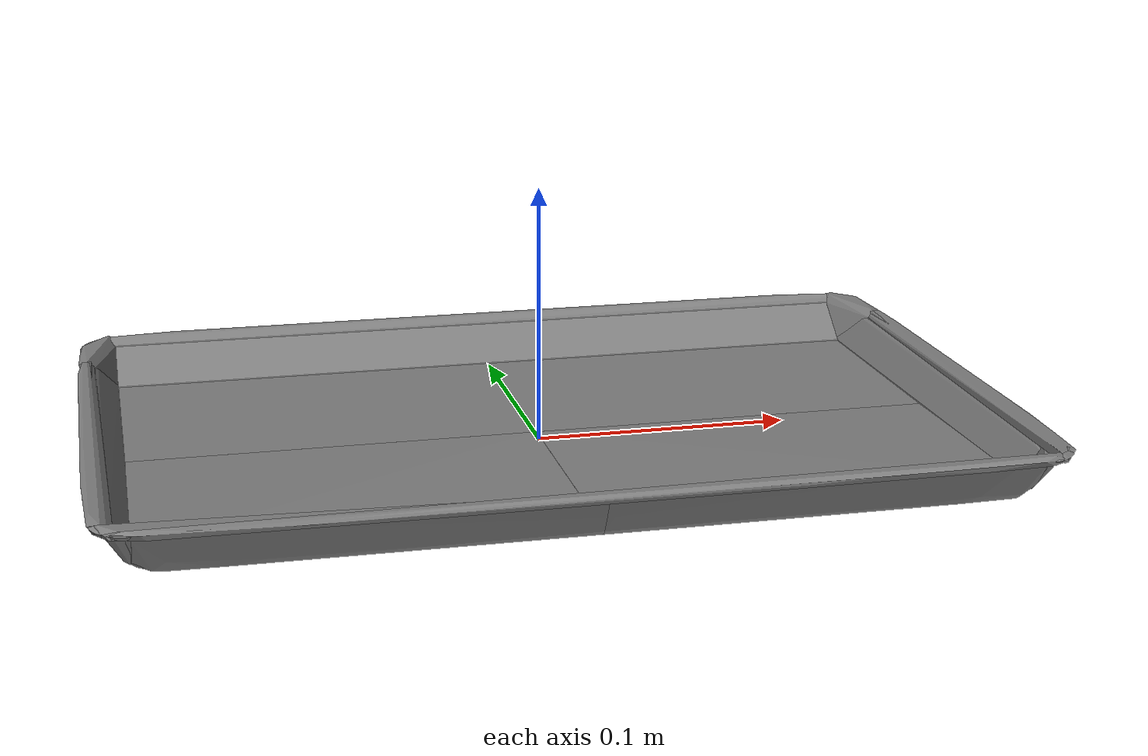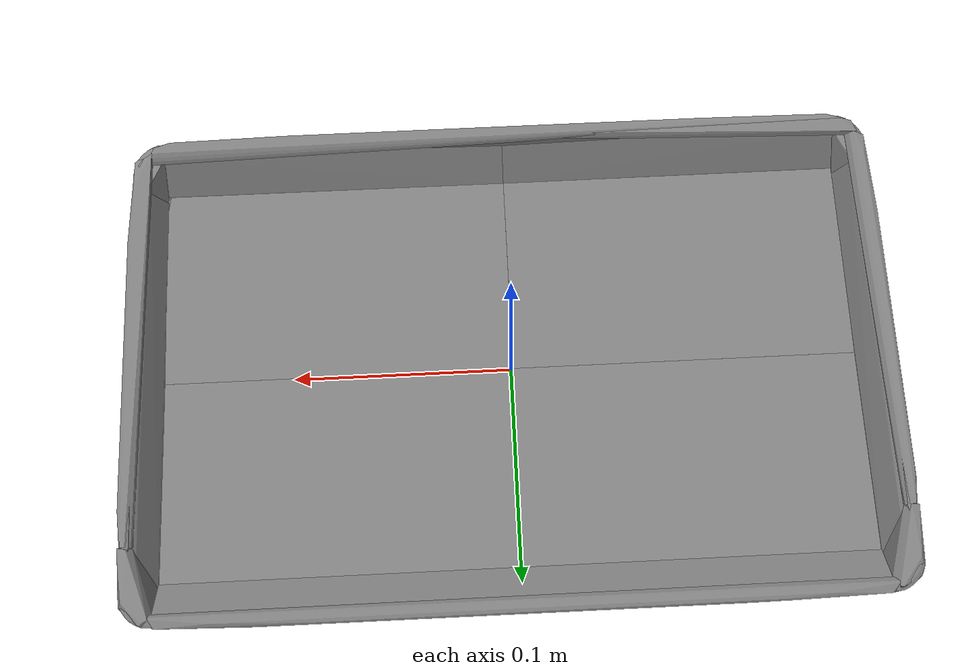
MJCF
<mujoco model="baking_tray1">
  <asset>
    <mesh file="../../meshes/train/baking_tray1/simple_mesh.stl" name="baking_tray1_mesh" scale="1 1 1"/>
    <mesh file="../../meshes/train/baking_tray1/baking_tray1_hull_1.stl" name="baking_tray1_hull_mesh_1" scale="1 1 1"/>
    <mesh file="../../meshes/train/baking_tray1/baking_tray1_hull_2.stl" name="baking_tray1_hull_mesh_2" scale="1 1 1"/>
    <mesh file="../../meshes/train/baking_tray1/baking_tray1_hull_3.stl" name="baking_tray1_hull_mesh_3" scale="1 1 1"/>
    <mesh file="../../meshes/train/baking_tray1/baking_tray1_hull_4.stl" name="baking_tray1_hull_mesh_4" scale="1 1 1"/>
    <mesh file="../../meshes/train/baking_tray1/baking_tray1_hull_5.stl" name="baking_tray1_hull_mesh_5" scale="1 1 1"/>
    <mesh file="../../meshes/train/baking_tray1/baking_tray1_hull_6.stl" name="baking_tray1_hull_mesh_6" scale="1 1 1"/>
    <mesh file="../../meshes/train/baking_tray1/baking_tray1_hull_7.stl" name="baking_tray1_hull_mesh_7" scale="1 1 1"/>
    <mesh file="../../meshes/train/baking_tray1/baking_tray1_hull_8.stl" name="baking_tray1_hull_mesh_8" scale="1 1 1"/>
    <mesh file="../../meshes/train/baking_tray1/baking_tray1_hull_9.stl" name="baking_tray1_hull_mesh_9" scale="1 1 1"/>
    <mesh file="../../meshes/train/baking_tray1/baking_tray1_hull_10.stl" name="baking_tray1_hull_mesh_10" scale="1 1 1"/>
    <mesh file="../../meshes/train/baking_tray1/baking_tray1_hull_11.stl" name="baking_tray1_hull_mesh_11" scale="1 1 1"/>
    <mesh file="../../meshes/train/baking_tray1/baking_tray1_hull_12.stl" name="baking_tray1_hull_mesh_12" scale="1 1 1"/>
    <mesh file="../../meshes/train/baking_tray1/baking_tray1_hull_13.stl" name="baking_tray1_hull_mesh_13" scale="1 1 1"/>
    <mesh file="../../meshes/train/baking_tray1/baking_tray1_hull_14.stl" name="baking_tray1_hull_mesh_14" scale="1 1 1"/>
    <mesh file="../../meshes/train/baking_tray1/baking_tray1_hull_15.stl" name="baking_tray1_hull_mesh_15" scale="1 1 1"/>
    <mesh file="../../meshes/train/baking_tray1/baking_tray1_hull_16.stl" name="baking_tray1_hull_mesh_16" scale="1 1 1"/>
    <mesh file="../../meshes/train/baking_tray1/baking_tray1_hull_17.stl" name="baking_tray1_hull_mesh_17" scale="1 1 1"/>
  </asset>
  <worldbody>
    <body>
      <body name="object">
        <geom pos="0 0 0" mesh="baking_tray1_mesh" type="mesh" contype="0" conaffinity="0" group="1"/>
        <geom pos="0 0 0" mesh="baking_tray1_hull_mesh_1" type="mesh" margin="0.001" solimp="0.998 0.998 0.001" solref="0.001 1" density="2000" friction="0.95 0.3 0.1" group="0" condim="4"/>
        <geom pos="0 0 0" mesh="baking_tray1_hull_mesh_2" type="mesh" margin="0.001" solimp="0.998 0.998 0.001" solref="0.001 1" density="2000" friction="0.95 0.3 0.1" group="0" condim="4"/>
        <geom pos="0 0 0" mesh="baking_tray1_hull_mesh_3" type="mesh" margin="0.001" solimp="0.998 0.998 0.001" solref="0.001 1" density="2000" friction="0.95 0.3 0.1" group="0" condim="4"/>
        <geom pos="0 0 0" mesh="baking_tray1_hull_mesh_4" type="mesh" margin="0.001" solimp="0.998 0.998 0.001" solref="0.001 1" density="2000" friction="0.95 0.3 0.1" group="0" condim="4"/>
        <geom pos="0 0 0" mesh="baking_tray1_hull_mesh_5" type="mesh" margin="0.001" solimp="0.998 0.998 0.001" solref="0.001 1" density="2000" friction="0.95 0.3 0.1" group="0" condim="4"/>
        <geom pos="0 0 0" mesh="baking_tray1_hull_mesh_6" type="mesh" margin="0.001" solimp="0.998 0.998 0.001" solref="0.001 1" density="2000" friction="0.95 0.3 0.1" group="0" condim="4"/>
        <geom pos="0 0 0" mesh="baking_tray1_hull_mesh_7" type="mesh" margin="0.001" solimp="0.998 0.998 0.001" solref="0.001 1" density="2000" friction="0.95 0.3 0.1" group="0" condim="4"/>
        <geom pos="0 0 0" mesh="baking_tray1_hull_mesh_8" type="mesh" margin="0.001" solimp="0.998 0.998 0.001" solref="0.001 1" density="2000" friction="0.95 0.3 0.1" group="0" condim="4"/>
        <geom pos="0 0 0" mesh="baking_tray1_hull_mesh_9" type="mesh" margin="0.001" solimp="0.998 0.998 0.001" solref="0.001 1" density="2000" friction="0.95 0.3 0.1" group="0" condim="4"/>
        <geom pos="0 0 0" mesh="baking_tray1_hull_mesh_10" type="mesh" margin="0.001" solimp="0.998 0.998 0.001" solref="0.001 1" density="2000" friction="0.95 0.3 0.1" group="0" condim="4"/>
        <geom pos="0 0 0" mesh="baking_tray1_hull_mesh_11" type="mesh" margin="0.001" solimp="0.998 0.998 0.001" solref="0.001 1" density="2000" friction="0.95 0.3 0.1" group="0" condim="4"/>
        <geom pos="0 0 0" mesh="baking_tray1_hull_mesh_12" type="mesh" margin="0.001" solimp="0.998 0.998 0.001" solref="0.001 1" density="2000" friction="0.95 0.3 0.1" group="0" condim="4"/>
        <geom pos="0 0 0" mesh="baking_tray1_hull_mesh_13" type="mesh" margin="0.001" solimp="0.998 0.998 0.001" solref="0.001 1" density="2000" friction="0.95 0.3 0.1" group="0" condim="4"/>
        <geom pos="0 0 0" mesh="baking_tray1_hull_mesh_14" type="mesh" margin="0.001" solimp="0.998 0.998 0.001" solref="0.001 1" density="2000" friction="0.95 0.3 0.1" group="0" condim="4"/>
        <geom pos="0 0 0" mesh="baking_tray1_hull_mesh_15" type="mesh" margin="0.001" solimp="0.998 0.998 0.001" solref="0.001 1" density="2000" friction="0.95 0.3 0.1" group="0" condim="4"/>
        <geom pos="0 0 0" mesh="baking_tray1_hull_mesh_16" type="mesh" margin="0.001" solimp="0.998 0.998 0.001" solref="0.001 1" density="2000" friction="0.95 0.3 0.1" group="0" condim="4"/>
        <geom pos="0 0 0" mesh="baking_tray1_hull_mesh_17" type="mesh" margin="0.001" solimp="0.998 0.998 0.001" solref="0.001 1" density="2000" friction="0.95 0.3 0.1" group="0" condim="4"/>
      </body>
      <site rgba="0 0 0 0" size="0.005" pos="0 0 -0.001" name="bottom_site"/>
      <site rgba="0 0 0 0" size="0.005" pos="0 0 0.02" name="top_site"/>
      <site rgba="0 0 0 0" size="0.005" pos="0.0375 0.02 0" name="horizontal_radius_site"/>
    </body>
  </worldbody>
</mujoco>
